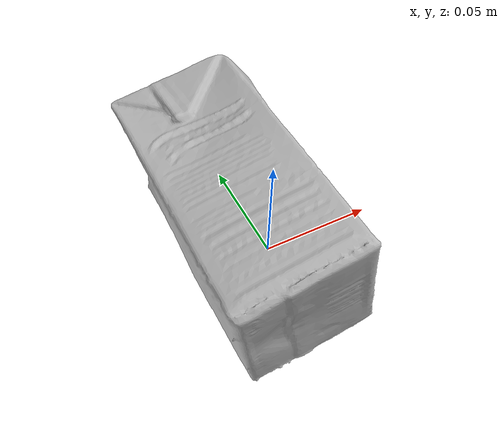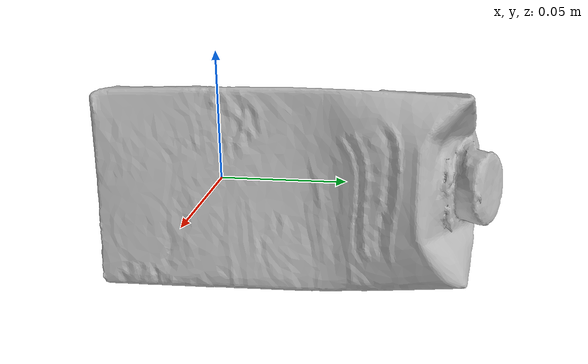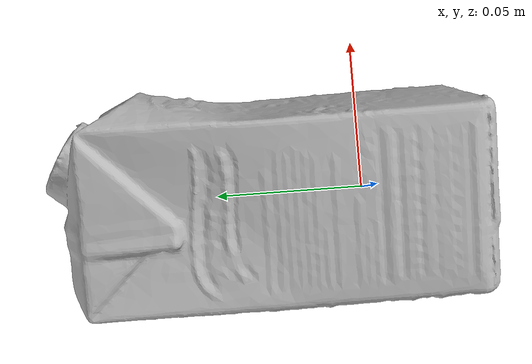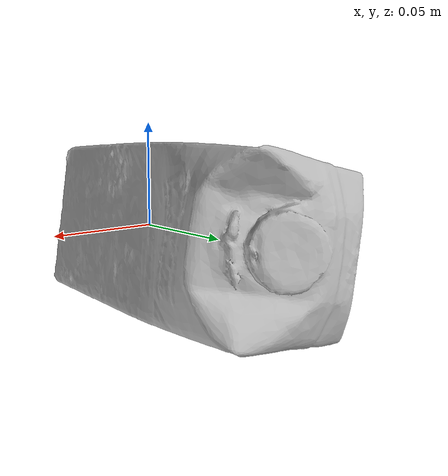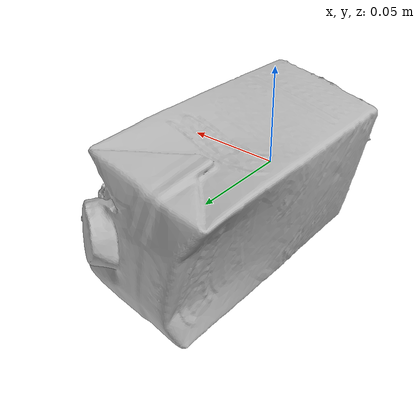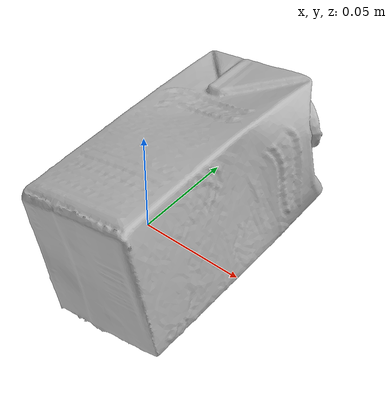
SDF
<?xml version='1.0'?>
<sdf version="1.4">
  <model name="FruitDrink">
    <static>false</static>
    <link name="link">
      <inertial>
        <pose>6.986348730538035e-05 0.029843001794670646 -0.0002491403859915639 1.583089495756309 -0.08980313328338368 -0.01282660364486789</pose>
        <mass>0.06531811299089883</mass>
        <inertia>
          <ixx>0.00012782583702386851</ixx>
          <ixy>-3.908673597745252e-21</ixy>
          <ixz>9.886921925423731e-21</ixz>
          <iyy>0.0001239590482419994</iyy>
          <iyz>-4.829170542742621e-21</iyz>
          <izz>5.046095496631367e-05</izz>
        </inertia>
      </inertial>
      <collision name="collision">
        <geometry>
          <mesh>
            <!-- Use a downsampled mesh for collisions -->
            <uri>model:///FruitDrink/FruitDrink_250_collision.obj</uri>
	        </mesh>
        </geometry>
        <surface>
      </surface>
      </collision>
      <visual name="visual">
        <geometry>
          <mesh>
            <uri>model:///FruitDrink/FruitDrink_25k_tex.obj</uri>
	        </mesh>
        </geometry>
        <material>
          <script>
            <uri>model:///FruitDrink/FruitDrink.material</uri>
            <name>FruitDrink</name>
          </script>
        </material>
      </visual>
    </link>
  </model>
</sdf>
